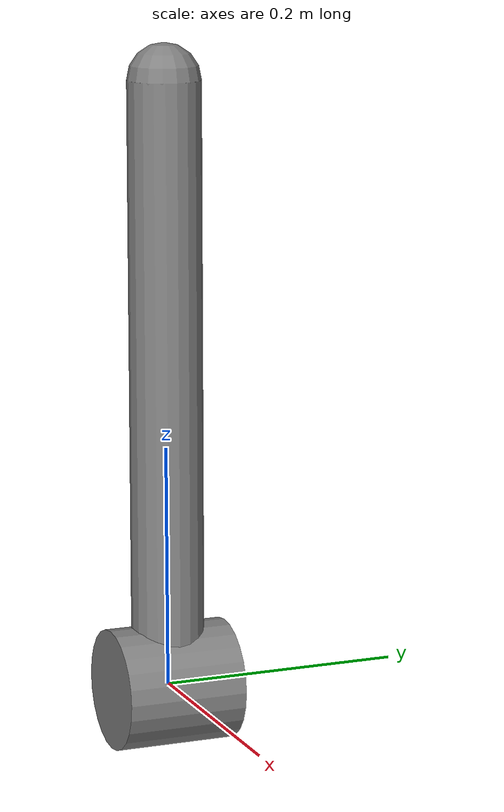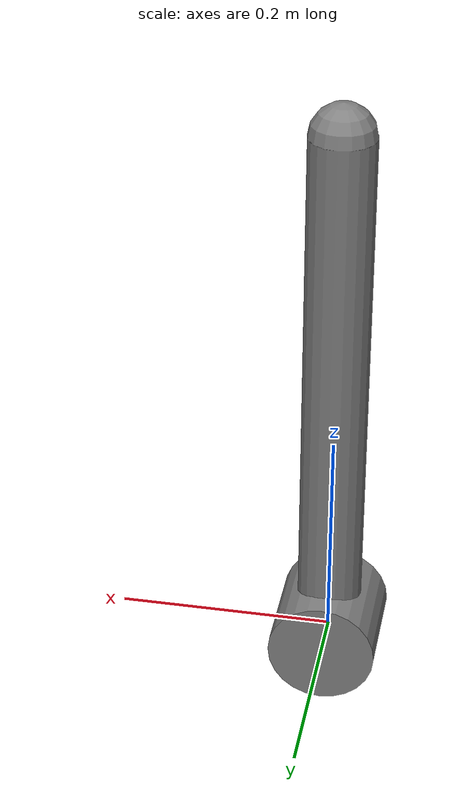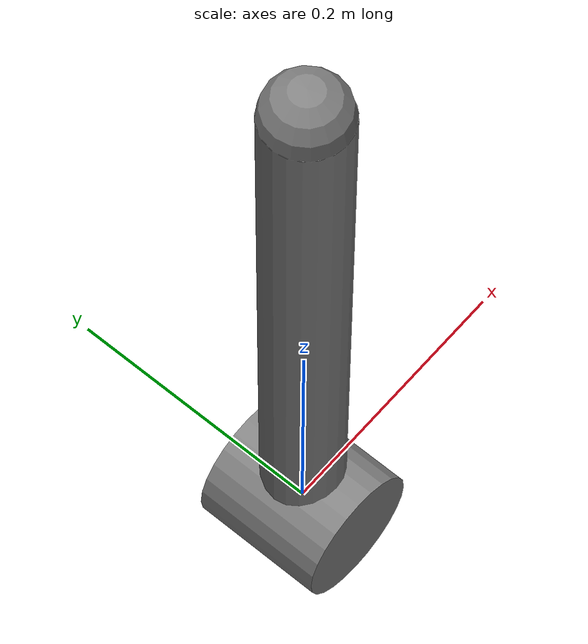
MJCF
<mujoco model="pendulum_with_actuator">
    <compiler angle="radian" />
    <option integrator="RK4" timestep="0.01" />
    <worldbody>
        <body name="pendulum" pos="0 0 0">
            <inertial pos="0 0 0.25" mass="1.0" diaginertia="0.02 0.02 0.01" />
            <joint name="pendulum_joint" axis="0 1 0" damping="0.01" frictionloss="0.01" armature="0.001" limited="false" />
            <geom type="capsule" fromto="0 0 0 0 0 0.5" size="0.03" />
        </body>
        <body name="pendulum_actuator" pos="0 0 0" euler="1.57 0 0">
            <inertial pos="0 0 0" mass="1.5" diaginertia="0.005 0.005 0.01" />
            <geom name="pendulum_actuator_geom" type="cylinder" size="0.05 0.05" />
        </body>
    </worldbody>
    <actuator>
        <general name="pendulum_act" joint="pendulum_joint" ctrllimited="true" ctrlrange="-20 20" />
    </actuator>
</mujoco>
